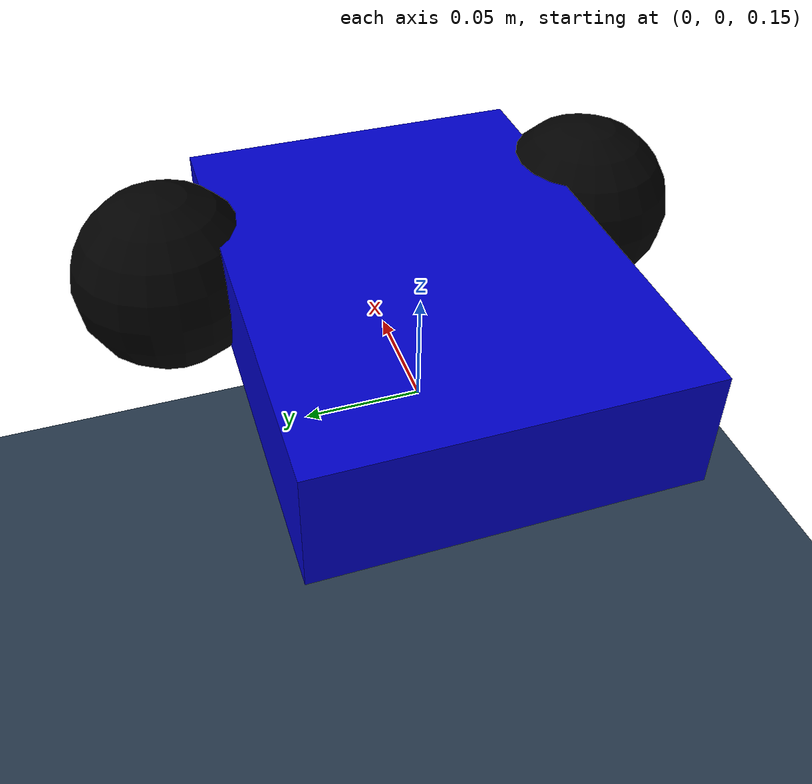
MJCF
<mujoco model="simple_robot">
  <compiler angle="radian"/>
  <option gravity="0 0 -9.81" timestep="0.005"/>
  <asset>
    <texture type="skybox" builtin="gradient" rgb1="0.3 0.5 0.7" rgb2="0 0 0" width="512" height="512"/>
    <texture name="plane" type="2d" builtin="checker" rgb1="0.2 0.3 0.4" rgb2="0.1 0.15 0.2" width="512" height="512"/>
    <material name="plane" texture="plane" texrepeat="5 5" reflectance="0.2"/>
  </asset>

  <worldbody>
    <light pos="0 0 2" dir="0 0 -1" directional="true"/>
    <geom name="floor" type="plane" size="0 0 .1" material="plane"/>

    <body name="base_link" pos="0 0 0.2">
      <freejoint name="root_freejoint"/>
      <geom type="box" size="0.1 0.075 0.025" rgba="0 0 0.8 1" mass="1.0"/>

      <body name="left_wheel" pos="0.05 0.095 0">
        <joint name="left_wheel_joint" type="hinge" axis="0 1 0"/>
        <geom type="sphere" size="0.04" rgba="0 0 0 1" mass="0.5"/>
      </body>

      <body name="right_wheel" pos="0.05 -0.095 0">
        <joint name="right_wheel_joint" type="hinge" axis="0 1 0"/>
        <geom type="sphere" size="0.04" rgba="0 0 0 1" mass="0.5"/>
      </body>
    </body>
  </worldbody>

  <actuator>
    <!-- We use velocity actuators for velocity control -->
    <velocity name="left_wheel_motor" joint="left_wheel_joint" kv="0.1"/>
    <velocity name="right_wheel_motor" joint="right_wheel_joint" kv="0.1"/>
  </actuator>

  <contact>
    <exclude body1="base_link" body2="left_wheel"/>
    <exclude body1="base_link" body2="right_wheel"/>
  </contact>
</mujoco>
